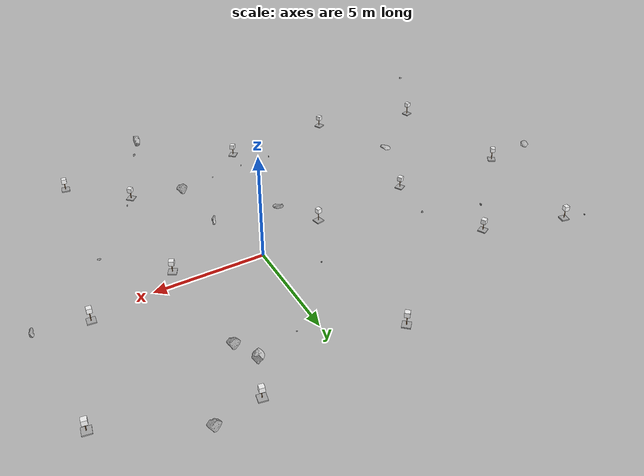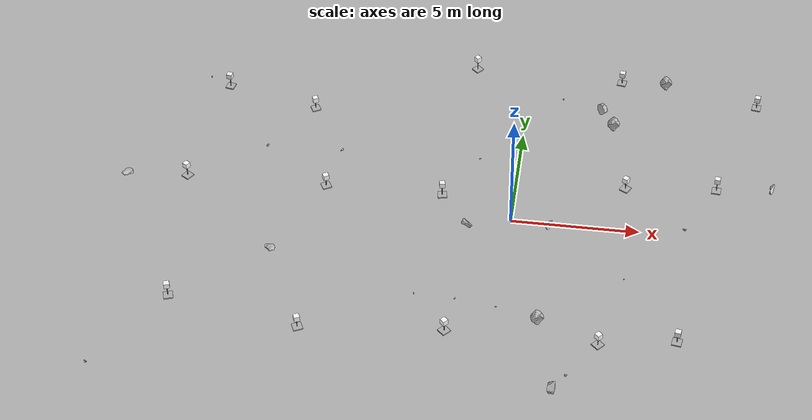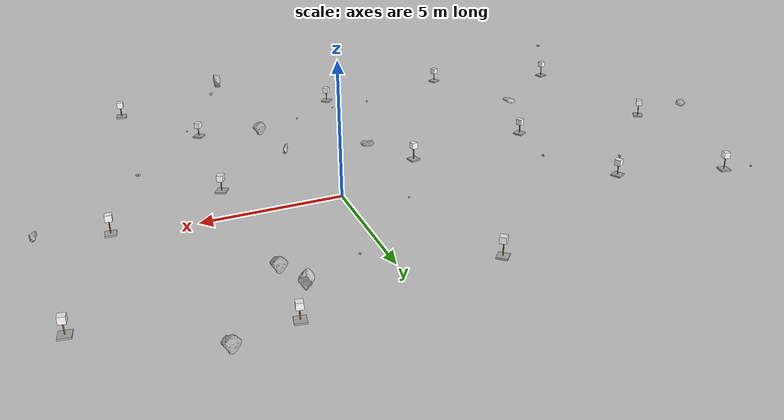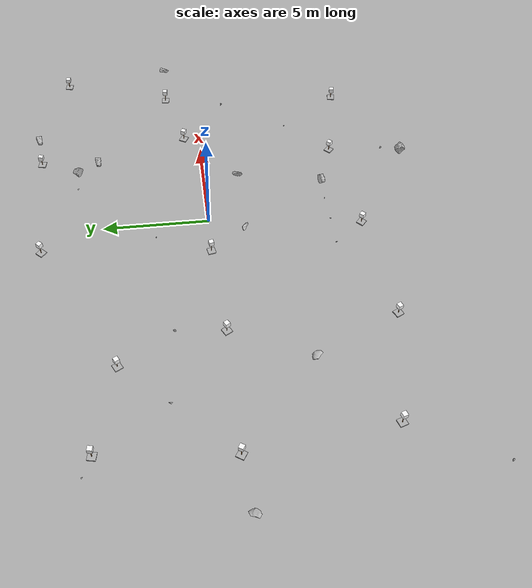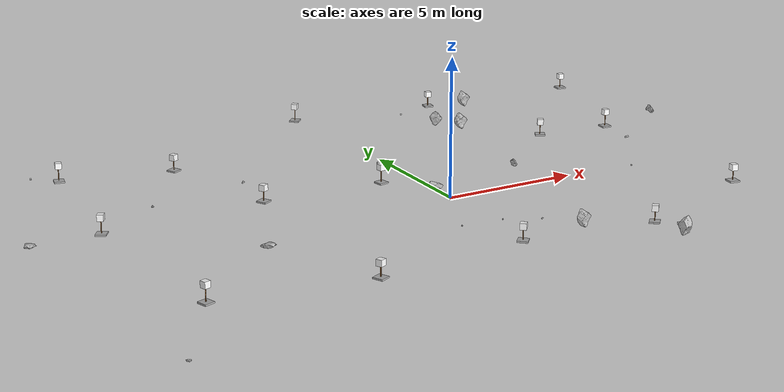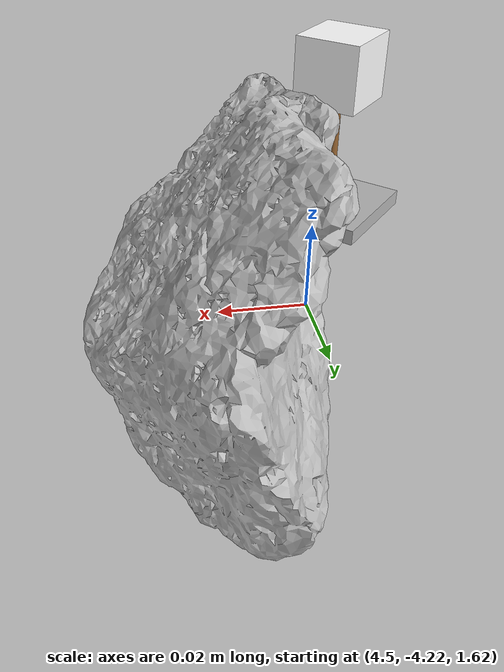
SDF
<sdf version="1.7">
 <world name="marsyard">
  <gravity>0 0 -9.81</gravity>
  <physics name="dart_physics" type="ignored">
   <max_step_size>0.003</max_step_size>
   <real_time_update_rate>333</real_time_update_rate>
   <real_time_factor>1.0</real_time_factor>
  </physics>
  <plugin filename="ignition-gazebo-physics-system" name="ignition::gazebo::systems::Physics"/>
  <plugin filename="ignition-gazebo-user-commands-system" name="ignition::gazebo::systems::UserCommands"/>
  <plugin filename="ignition-gazebo-scene-broadcaster-system" name="ignition::gazebo::systems::SceneBroadcaster"/>
  <plugin filename="ignition-gazebo-contact-system" name="ignition::gazebo::systems::Contact"/>
  <plugin filename="ignition-gazebo-sensors-system" name="ignition::gazebo::systems::Sensors">
   <render_engine>ogre2</render_engine>
  </plugin>
  <plugin filename="ignition-gazebo-imu-system" name="ignition::gazebo::systems::Imu"/>
  <plugin filename="ignition-gazebo-magnetometer-system" name="ignition::gazebo::systems::Magnetometer"/>
  <scene>
   <ambient>0.95 0.95 0.95 1</ambient>
   <background>0.70 0.70 0.70 1</background>
   <shadows>false</shadows>
  </scene>
  <light type="directional" name="sun">
   <cast_shadows>false</cast_shadows>
   <pose>0 0 30 0 0 0</pose>
   <diffuse>1 1 1 1</diffuse>
   <specular>0.15 0.15 0.15 1</specular>
   <direction>-0.35 0.1 -0.93</direction>
  </light>
  <model name="Rock_1">
   <static>true</static>
   <pose>-3.0000 -5.5000 1.2633 0.0000 0.0000 -1.6464</pose>
   <link name="link">
    <visual name="visual">
     <geometry><mesh><uri>package://rock_generator/rocks_ws/rock_5/meshes/rock_5.obj</uri></mesh></geometry>
    </visual>
    <collision name="collision">
     <geometry><mesh><uri>package://rock_generator/rocks_ws/rock_5/meshes/rock_5.obj</uri></mesh></geometry>
    </collision>
   </link>
  </model>
  <model name="Rock_2">
   <static>true</static>
   <pose>-1.5000 -5.5000 1.2031 0.0000 0.0000 -2.3221</pose>
   <link name="link">
    <visual name="visual">
     <geometry><mesh><uri>package://rock_generator/rocks_ws/rock_5/meshes/rock_5.obj</uri></mesh></geometry>
    </visual>
    <collision name="collision">
     <geometry><mesh><uri>package://rock_generator/rocks_ws/rock_5/meshes/rock_5.obj</uri></mesh></geometry>
    </collision>
   </link>
  </model>
  <model name="Rock_3">
   <static>true</static>
   <pose>0.0000 -5.5000 0.9745 0.0000 0.0000 -0.1630</pose>
   <link name="link">
    <visual name="visual">
     <geometry><mesh><uri>package://rock_generator/rocks_ws/rock_5/meshes/rock_5.obj</uri></mesh></geometry>
    </visual>
    <collision name="collision">
     <geometry><mesh><uri>package://rock_generator/rocks_ws/rock_5/meshes/rock_5.obj</uri></mesh></geometry>
    </collision>
   </link>
  </model>
  <model name="Rock_4">
   <static>true</static>
   <pose>1.5000 -5.5000 0.7193 0.0000 0.0000 -2.7299</pose>
   <link name="link">
    <visual name="visual">
     <geometry><mesh><uri>package://rock_generator/rocks_ws/rock_1/meshes/rock_1.obj</uri></mesh></geometry>
    </visual>
    <collision name="collision">
     <geometry><mesh><uri>package://rock_generator/rocks_ws/rock_1/meshes/rock_1.obj</uri></mesh></geometry>
    </collision>
   </link>
  </model>
  <model name="Rock_5">
   <static>true</static>
   <pose>-1.5000 -1.5000 1.1655 0.0000 0.0000 2.5687</pose>
   <link name="link">
    <visual name="visual">
     <geometry><mesh><uri>package://rock_generator/rocks_ws/rock_4/meshes/rock_4.obj</uri></mesh></geometry>
    </visual>
    <collision name="collision">
     <geometry><mesh><uri>package://rock_generator/rocks_ws/rock_4/meshes/rock_4.obj</uri></mesh></geometry>
    </collision>
   </link>
  </model>
  <model name="Rock_7">
   <static>true</static>
   <pose>1.5000 -1.5000 1.4813 0.0000 0.0000 -1.9368</pose>
   <link name="link">
    <visual name="visual">
     <geometry><mesh><uri>package://rock_generator/rocks_ws/rock_4/meshes/rock_4.obj</uri></mesh></geometry>
    </visual>
    <collision name="collision">
     <geometry><mesh><uri>package://rock_generator/rocks_ws/rock_4/meshes/rock_4.obj</uri></mesh></geometry>
    </collision>
   </link>
  </model>
  <model name="Rock_8">
   <static>true</static>
   <pose>-1.5000 2.5000 0.8244 0.0000 0.0000 0.2574</pose>
   <link name="link">
    <visual name="visual">
     <geometry><mesh><uri>package://rock_generator/rocks_ws/rock_5/meshes/rock_5.obj</uri></mesh></geometry>
    </visual>
    <collision name="collision">
     <geometry><mesh><uri>package://rock_generator/rocks_ws/rock_5/meshes/rock_5.obj</uri></mesh></geometry>
    </collision>
   </link>
  </model>
  <model name="Rock_11">
   <static>true</static>
   <pose>1.5000 6.0000 1.2874 0.0000 0.0000 2.3125</pose>
   <link name="link">
    <visual name="visual">
     <geometry><mesh><uri>package://rock_generator/rocks_ws/rock_5/meshes/rock_5.obj</uri></mesh></geometry>
    </visual>
    <collision name="collision">
     <geometry><mesh><uri>package://rock_generator/rocks_ws/rock_5/meshes/rock_5.obj</uri></mesh></geometry>
    </collision>
   </link>
  </model>
  <model name="Rock_12">
   <static>true</static>
   <pose>3.0000 6.0000 0.8656 0.0000 0.0000 -0.6915</pose>
   <link name="link">
    <visual name="visual">
     <geometry><mesh><uri>package://rock_generator/rocks_ws/rock_1/meshes/rock_1.obj</uri></mesh></geometry>
    </visual>
    <collision name="collision">
     <geometry><mesh><uri>package://rock_generator/rocks_ws/rock_1/meshes/rock_1.obj</uri></mesh></geometry>
    </collision>
   </link>
  </model>
  <model name="Rock_13">
   <static>true</static>
   <pose>2.4852 -9.5913 1.5741 0.0000 0.0000 1.6225</pose>
   <link name="link">
    <visual name="visual">
     <geometry><mesh><uri>package://rock_generator/rocks_ws/rock_1/meshes/rock_1.obj</uri></mesh></geometry>
    </visual>
    <collision name="collision">
     <geometry><mesh><uri>package://rock_generator/rocks_ws/rock_1/meshes/rock_1.obj</uri></mesh></geometry>
    </collision>
   </link>
  </model>
  <model name="Rock_15">
   <static>true</static>
   <pose>6.6291 -1.2183 1.5537 0.0000 0.0000 2.7369</pose>
   <link name="link">
    <visual name="visual">
     <geometry><mesh><uri>package://rock_generator/rocks_ws/rock_6/meshes/rock_6.obj</uri></mesh></geometry>
    </visual>
    <collision name="collision">
     <geometry><mesh><uri>package://rock_generator/rocks_ws/rock_6/meshes/rock_6.obj</uri></mesh></geometry>
    </collision>
   </link>
  </model>
  <model name="Rock_17">
   <static>true</static>
   <pose>-10.0501 2.3280 0.7031 0.0000 0.0000 1.2288</pose>
   <link name="link">
    <visual name="visual">
     <geometry><mesh><uri>package://rock_generator/rocks_ws/rock_6/meshes/rock_6.obj</uri></mesh></geometry>
    </visual>
   </link>
  </model>
  <model name="Rock_18">
   <static>true</static>
   <pose>9.9503 1.5204 1.4338 0.0000 0.0000 1.3435</pose>
   <link name="link">
    <visual name="visual">
     <geometry><mesh><uri>package://rock_generator/rocks_ws/rock_4/meshes/rock_4.obj</uri></mesh></geometry>
    </visual>
    <collision name="collision">
     <geometry><mesh><uri>package://rock_generator/rocks_ws/rock_4/meshes/rock_4.obj</uri></mesh></geometry>
    </collision>
   </link>
  </model>
  <model name="Rock_19">
   <static>true</static>
   <pose>-15.0181 -0.3960 1.1501 0.0000 0.0000 0.8718</pose>
   <link name="link">
    <visual name="visual">
     <geometry><mesh><uri>package://rock_generator/rocks_ws/rock_8/meshes/rock_8.obj</uri></mesh></geometry>
    </visual>
    <collision name="collision">
     <geometry><mesh><uri>package://rock_generator/rocks_ws/rock_8/meshes/rock_8.obj</uri></mesh></geometry>
    </collision>
   </link>
  </model>
  <model name="Rock_20">
   <static>true</static>
   <pose>5.6013 8.2009 0.8293 0.0000 0.0000 -2.8639</pose>
   <link name="link">
    <visual name="visual">
     <geometry><mesh><uri>package://rock_generator/rocks_ws/rock_1/meshes/rock_1.obj</uri></mesh></geometry>
    </visual>
    <collision name="collision">
     <geometry><mesh><uri>package://rock_generator/rocks_ws/rock_1/meshes/rock_1.obj</uri></mesh></geometry>
    </collision>
   </link>
  </model>
  <model name="Rock_22">
   <static>true</static>
   <pose>-14.0016 -10.0664 1.0778 0.0000 0.0000 2.3108</pose>
   <link name="link">
    <visual name="visual">
     <geometry><mesh><uri>package://rock_generator/rocks_ws/rock_6/meshes/rock_6.obj</uri></mesh></geometry>
    </visual>
    <collision name="collision">
     <geometry><mesh><uri>package://rock_generator/rocks_ws/rock_6/meshes/rock_6.obj</uri></mesh></geometry>
    </collision>
   </link>
  </model>
  <model name="Rock_23">
   <static>true</static>
   <pose>2.7911 -8.7434 1.3395 0.0000 0.0000 2.9712</pose>
   <link name="link">
    <visual name="visual">
     <geometry><mesh><uri>package://rock_generator/rocks_ws/rock_9/meshes/rock_9.obj</uri></mesh></geometry>
    </visual>
    <collision name="collision">
     <geometry><mesh><uri>package://rock_generator/rocks_ws/rock_9/meshes/rock_9.obj</uri></mesh></geometry>
    </collision>
   </link>
  </model>
  <model name="Rock_24">
   <static>true</static>
   <pose>-6.9515 1.9625 1.1391 0.0000 0.0000 -2.3042</pose>
   <link name="link">
    <visual name="visual">
     <geometry><mesh><uri>package://rock_generator/rocks_ws/rock_6/meshes/rock_6.obj</uri></mesh></geometry>
    </visual>
    <collision name="collision">
     <geometry><mesh><uri>package://rock_generator/rocks_ws/rock_6/meshes/rock_6.obj</uri></mesh></geometry>
    </collision>
   </link>
  </model>
  <model name="Rock_25">
   <static>true</static>
   <pose>3.6224 5.2368 0.9350 0.0000 0.0000 -3.0022</pose>
   <link name="link">
    <visual name="visual">
     <geometry><mesh><uri>package://rock_generator/rocks_ws/rock_1/meshes/rock_1.obj</uri></mesh></geometry>
    </visual>
   </link>
  </model>
  <model name="Rock_26">
   <static>true</static>
   <pose>-13.0721 5.6784 1.1732 0.0000 0.0000 2.1604</pose>
   <link name="link">
    <visual name="visual">
     <geometry><mesh><uri>package://rock_generator/rocks_ws/rock_5/meshes/rock_5.obj</uri></mesh></geometry>
    </visual>
    <collision name="collision">
     <geometry><mesh><uri>package://rock_generator/rocks_ws/rock_5/meshes/rock_5.obj</uri></mesh></geometry>
    </collision>
   </link>
  </model>
  <model name="Rock_27">
   <static>true</static>
   <pose>4.5255 -4.1796 1.6530 0.0000 0.0000 -1.7433</pose>
   <link name="link">
    <visual name="visual">
     <geometry><mesh><uri>package://rock_generator/rocks_ws/rock_5/meshes/rock_5.obj</uri></mesh></geometry>
    </visual>
    <collision name="collision">
     <geometry><mesh><uri>package://rock_generator/rocks_ws/rock_5/meshes/rock_5.obj</uri></mesh></geometry>
    </collision>
   </link>
  </model>
  <model name="Rock_28">
   <static>true</static>
   <pose>-8.6971 -3.6574 1.0794 0.0000 0.0000 2.0957</pose>
   <link name="link">
    <visual name="visual">
     <geometry><mesh><uri>package://rock_generator/rocks_ws/rock_8/meshes/rock_8.obj</uri></mesh></geometry>
    </visual>
    <collision name="collision">
     <geometry><mesh><uri>package://rock_generator/rocks_ws/rock_8/meshes/rock_8.obj</uri></mesh></geometry>
    </collision>
   </link>
  </model>
  <model name="ArUco_1">
   <pose>-12.200300 5.334200 1.033976 0.000000 0.000000 1.375056</pose>
   <include><uri>model://aruco_1</uri></include>
  </model>
  <model name="ArUco_2">
   <pose>-8.450300 4.334200 1.099796 0.000000 0.000000 -2.651266</pose>
   <include><uri>model://aruco_2</uri></include>
  </model>
  <model name="ArUco_3">
   <pose>-2.200300 7.584200 1.154883 0.000000 0.000000 -0.739992</pose>
   <include><uri>model://aruco_3</uri></include>
  </model>
  <model name="ArUco_4">
   <pose>3.799700 7.834200 0.845736 0.000000 0.000000 -1.743671</pose>
   <include><uri>model://aruco_4</uri></include>
  </model>
  <model name="ArUco_5">
   <pose>9.299700 6.584200 1.162188 0.000000 0.000000 -1.726727</pose>
   <include><uri>model://aruco_5</uri></include>
  </model>
  <model name="ArUco_6">
   <pose>-12.700300 -0.165800 1.010542 0.000000 0.000000 -0.568984</pose>
   <include><uri>model://aruco_6</uri></include>
  </model>
  <model name="ArUco_7">
   <pose>-7.200300 -0.165800 1.131783 0.000000 0.000000 0.504760</pose>
   <include><uri>model://aruco_7</uri></include>
  </model>
  <model name="ArUco_8">
   <pose>-2.700300 0.084200 0.957425 0.000000 0.000000 -1.373921</pose>
   <include><uri>model://aruco_8</uri></include>
  </model>
  <model name="ArUco_9">
   <pose>4.299700 0.834200 1.425683 0.000000 0.000000 2.635445</pose>
   <include><uri>model://aruco_9</uri></include>
  </model>
  <model name="ArUco_10">
   <pose>7.799700 1.584200 1.038827 0.000000 0.000000 -0.093288</pose>
   <include><uri>model://aruco_10</uri></include>
  </model>
  <model name="ArUco_11">
   <pose>-11.950300 -6.415800 0.873342 0.000000 0.000000 0.313763</pose>
   <include><uri>model://aruco_11</uri></include>
  </model>
  <model name="ArUco_12">
   <pose>-6.950300 -7.415800 0.976442 0.000000 0.000000 2.004330</pose>
   <include><uri>model://aruco_12</uri></include>
  </model>
  <model name="ArUco_13">
   <pose>-1.700300 -6.915800 0.976192 0.000000 0.000000 0.823993</pose>
   <include><uri>model://aruco_13</uri></include>
  </model>
  <model name="ArUco_14">
   <pose>3.799700 -6.415800 0.451417 0.000000 0.000000 2.398040</pose>
   <include><uri>model://aruco_14</uri></include>
  </model>
  <model name="ArUco_15">
   <pose>6.549700 -6.915800 1.544783 0.000000 0.000000 1.410102</pose>
   <include><uri>model://aruco_15</uri></include>
  </model>
 </world>
</sdf>

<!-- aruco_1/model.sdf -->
<sdf version="1.6">
  <model name="aruco_1">
    <static>true</static>
    <link name="link">
      <!-- Concrete Base -->
      <visual name="base_visual">
        <pose>0 0 0.025 0 0 0</pose>
        <geometry>
          <box>
            <size>0.35 0.35 0.05</size>
          </box>
        </geometry>
        <material>
          <ambient>0.7 0.7 0.7 1</ambient>
          <diffuse>0.7 0.7 0.7 1</diffuse>
        </material>
      </visual>
      <collision name="base_collision">
        <pose>0 0 0.025 0 0 0</pose>
        <geometry>
          <box>
            <size>0.35 0.35 0.05</size>
          </box>
        </geometry>
      </collision>

      <!-- Wooden Pole -->
      <visual name="pole_visual">
        <pose>0 0 0.26 0 0 0</pose>
        <geometry>
          <cylinder>
            <radius>0.015</radius>
            <length>0.42</length>
          </cylinder>
        </geometry>
        <material>
          <ambient>0.6 0.4 0.2 1</ambient>
          <diffuse>0.6 0.4 0.2 1</diffuse>
        </material>
      </visual>
      <collision name="pole_collision">
        <pose>0 0 0.26 0 0 0</pose>
        <geometry>
          <cylinder>
            <radius>0.015</radius>
            <length>0.42</length>
          </cylinder>
        </geometry>
      </collision>

      <!-- Head Box with ArUco Texture -->
      <visual name="head_visual">
        <pose>0 0 0.575 0 0 0</pose>
        <geometry>
          <box>
            <size>0.21 0.21 0.21</size>
          </box>
        </geometry>
        <material>
          <ambient>1 1 1 1</ambient>
          <diffuse>1 1 1 1</diffuse>
          <pbr>
            <metal>
              <albedo_map>model://aruco_1/materials/textures/marker_1.png</albedo_map>
            </metal>
          </pbr>
        </material>
      </visual>
      <collision name="head_collision">
        <pose>0 0 0.575 0 0 0</pose>
        <geometry>
          <box>
            <size>0.21 0.21 0.21</size>
          </box>
        </geometry>
      </collision>
    </link>
  </model>
</sdf>

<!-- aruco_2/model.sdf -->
<sdf version="1.6">
  <model name="aruco_2">
    <static>true</static>
    <link name="link">
      <visual name="base_visual">
        <pose>0 0 0.025 0 0 0</pose>
        <geometry>
          <box>
            <size>0.35 0.35 0.05</size>
          </box>
        </geometry>
        <material>
          <ambient>0.7 0.7 0.7 1</ambient>
          <diffuse>0.7 0.7 0.7 1</diffuse>
        </material>
      </visual>
      <collision name="base_collision">
        <pose>0 0 0.025 0 0 0</pose>
        <geometry>
          <box>
            <size>0.35 0.35 0.05</size>
          </box>
        </geometry>
      </collision>
      <visual name="pole_visual">
        <pose>0 0 0.228500 0 0 0</pose>
        <geometry>
          <cylinder>
            <radius>0.015</radius>
            <length>0.357000</length>
          </cylinder>
        </geometry>
        <material>
          <ambient>0.6 0.4 0.2 1</ambient>
          <diffuse>0.6 0.4 0.2 1</diffuse>
        </material>
      </visual>
      <collision name="pole_collision">
        <pose>0 0 0.228500 0 0 0</pose>
        <geometry>
          <cylinder>
            <radius>0.015</radius>
            <length>0.357000</length>
          </cylinder>
        </geometry>
      </collision>
      <visual name="head_visual">
        <pose>0 0 0.496250 0 0 0</pose>
        <geometry>
          <box>
            <size>0.21 0.21 0.21</size>
          </box>
        </geometry>
        <material>
          <ambient>1 1 1 1</ambient>
          <diffuse>1 1 1 1</diffuse>
          <pbr>
            <metal>
              <albedo_map>model://aruco_2/materials/textures/marker_2.png</albedo_map>
            </metal>
          </pbr>
        </material>
      </visual>
      <collision name="head_collision">
        <pose>0 0 0.496250 0 0 0</pose>
        <geometry>
          <box>
            <size>0.21 0.21 0.21</size>
          </box>
        </geometry>
      </collision>
    </link>
  </model>
</sdf>

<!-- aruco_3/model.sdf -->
<sdf version="1.6">
  <model name="aruco_3">
    <static>true</static>
    <link name="link">
      <!-- Concrete Base -->
      <visual name="base_visual">
        <pose>0 0 0.025 0 0 0</pose>
        <geometry>
          <box>
            <size>0.35 0.35 0.05</size>
          </box>
        </geometry>
        <material>
          <ambient>0.7 0.7 0.7 1</ambient>
          <diffuse>0.7 0.7 0.7 1</diffuse>
        </material>
      </visual>
      <collision name="base_collision">
        <pose>0 0 0.025 0 0 0</pose>
        <geometry>
          <box>
            <size>0.35 0.35 0.05</size>
          </box>
        </geometry>
      </collision>

      <!-- Wooden Pole -->
      <visual name="pole_visual">
        <pose>0 0 0.26 0 0 0</pose>
        <geometry>
          <cylinder>
            <radius>0.015</radius>
            <length>0.42</length>
          </cylinder>
        </geometry>
        <material>
          <ambient>0.6 0.4 0.2 1</ambient>
          <diffuse>0.6 0.4 0.2 1</diffuse>
        </material>
      </visual>
      <collision name="pole_collision">
        <pose>0 0 0.26 0 0 0</pose>
        <geometry>
          <cylinder>
            <radius>0.015</radius>
            <length>0.42</length>
          </cylinder>
        </geometry>
      </collision>

      <!-- Head Box with ArUco Texture -->
      <visual name="head_visual">
        <pose>0 0 0.575 0 0 0</pose>
        <geometry>
          <box>
            <size>0.21 0.21 0.21</size>
          </box>
        </geometry>
        <material>
          <ambient>1 1 1 1</ambient>
          <diffuse>1 1 1 1</diffuse>
          <pbr>
            <metal>
              <albedo_map>model://aruco_3/materials/textures/marker_3.png</albedo_map>
            </metal>
          </pbr>
        </material>
      </visual>
      <collision name="head_collision">
        <pose>0 0 0.575 0 0 0</pose>
        <geometry>
          <box>
            <size>0.21 0.21 0.21</size>
          </box>
        </geometry>
      </collision>
    </link>
  </model>
</sdf>

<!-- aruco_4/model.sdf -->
<sdf version="1.6">
  <model name="aruco_4">
    <static>true</static>
    <link name="link">
      <visual name="base_visual">
        <pose>0 0 0.025 0 0 0</pose>
        <geometry>
          <box>
            <size>0.35 0.35 0.05</size>
          </box>
        </geometry>
        <material>
          <ambient>0.7 0.7 0.7 1</ambient>
          <diffuse>0.7 0.7 0.7 1</diffuse>
        </material>
      </visual>
      <collision name="base_collision">
        <pose>0 0 0.025 0 0 0</pose>
        <geometry>
          <box>
            <size>0.35 0.35 0.05</size>
          </box>
        </geometry>
      </collision>
      <visual name="pole_visual">
        <pose>0 0 0.228500 0 0 0</pose>
        <geometry>
          <cylinder>
            <radius>0.015</radius>
            <length>0.357000</length>
          </cylinder>
        </geometry>
        <material>
          <ambient>0.6 0.4 0.2 1</ambient>
          <diffuse>0.6 0.4 0.2 1</diffuse>
        </material>
      </visual>
      <collision name="pole_collision">
        <pose>0 0 0.228500 0 0 0</pose>
        <geometry>
          <cylinder>
            <radius>0.015</radius>
            <length>0.357000</length>
          </cylinder>
        </geometry>
      </collision>
      <visual name="head_visual">
        <pose>0 0 0.496250 0 0 0</pose>
        <geometry>
          <box>
            <size>0.21 0.21 0.21</size>
          </box>
        </geometry>
        <material>
          <ambient>1 1 1 1</ambient>
          <diffuse>1 1 1 1</diffuse>
          <pbr>
            <metal>
              <albedo_map>model://aruco_4/materials/textures/marker_4.png</albedo_map>
            </metal>
          </pbr>
        </material>
      </visual>
      <collision name="head_collision">
        <pose>0 0 0.496250 0 0 0</pose>
        <geometry>
          <box>
            <size>0.21 0.21 0.21</size>
          </box>
        </geometry>
      </collision>
    </link>
  </model>
</sdf>

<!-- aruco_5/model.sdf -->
<sdf version="1.6">
  <model name="aruco_5">
    <static>true</static>
    <link name="link">
      <visual name="base_visual">
        <pose>0 0 0.025 0 0 0</pose>
        <geometry>
          <box>
            <size>0.35 0.35 0.05</size>
          </box>
        </geometry>
        <material>
          <ambient>0.7 0.7 0.7 1</ambient>
          <diffuse>0.7 0.7 0.7 1</diffuse>
        </material>
      </visual>
      <collision name="base_collision">
        <pose>0 0 0.025 0 0 0</pose>
        <geometry>
          <box>
            <size>0.35 0.35 0.05</size>
          </box>
        </geometry>
      </collision>
      <visual name="pole_visual">
        <pose>0 0 0.228500 0 0 0</pose>
        <geometry>
          <cylinder>
            <radius>0.015</radius>
            <length>0.357000</length>
          </cylinder>
        </geometry>
        <material>
          <ambient>0.6 0.4 0.2 1</ambient>
          <diffuse>0.6 0.4 0.2 1</diffuse>
        </material>
      </visual>
      <collision name="pole_collision">
        <pose>0 0 0.228500 0 0 0</pose>
        <geometry>
          <cylinder>
            <radius>0.015</radius>
            <length>0.357000</length>
          </cylinder>
        </geometry>
      </collision>
      <visual name="head_visual">
        <pose>0 0 0.496250 0 0 0</pose>
        <geometry>
          <box>
            <size>0.21 0.21 0.21</size>
          </box>
        </geometry>
        <material>
          <ambient>1 1 1 1</ambient>
          <diffuse>1 1 1 1</diffuse>
          <pbr>
            <metal>
              <albedo_map>model://aruco_5/materials/textures/marker_5.png</albedo_map>
            </metal>
          </pbr>
        </material>
      </visual>
      <collision name="head_collision">
        <pose>0 0 0.496250 0 0 0</pose>
        <geometry>
          <box>
            <size>0.21 0.21 0.21</size>
          </box>
        </geometry>
      </collision>
    </link>
  </model>
</sdf>

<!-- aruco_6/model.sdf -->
<sdf version="1.6">
  <model name="aruco_6">
    <static>true</static>
    <link name="link">
      <!-- Concrete Base -->
      <visual name="base_visual">
        <pose>0 0 0.025 0 0 0</pose>
        <geometry>
          <box>
            <size>0.35 0.35 0.05</size>
          </box>
        </geometry>
        <material>
          <ambient>0.7 0.7 0.7 1</ambient>
          <diffuse>0.7 0.7 0.7 1</diffuse>
        </material>
      </visual>
      <collision name="base_collision">
        <pose>0 0 0.025 0 0 0</pose>
        <geometry>
          <box>
            <size>0.35 0.35 0.05</size>
          </box>
        </geometry>
      </collision>

      <!-- Wooden Pole -->
      <visual name="pole_visual">
        <pose>0 0 0.26 0 0 0</pose>
        <geometry>
          <cylinder>
            <radius>0.015</radius>
            <length>0.42</length>
          </cylinder>
        </geometry>
        <material>
          <ambient>0.6 0.4 0.2 1</ambient>
          <diffuse>0.6 0.4 0.2 1</diffuse>
        </material>
      </visual>
      <collision name="pole_collision">
        <pose>0 0 0.26 0 0 0</pose>
        <geometry>
          <cylinder>
            <radius>0.015</radius>
            <length>0.42</length>
          </cylinder>
        </geometry>
      </collision>

      <!-- Head Box with ArUco Texture -->
      <visual name="head_visual">
        <pose>0 0 0.575 0 0 0</pose>
        <geometry>
          <box>
            <size>0.21 0.21 0.21</size>
          </box>
        </geometry>
        <material>
          <ambient>1 1 1 1</ambient>
          <diffuse>1 1 1 1</diffuse>
          <pbr>
            <metal>
              <albedo_map>model://aruco_6/materials/textures/marker_6.png</albedo_map>
            </metal>
          </pbr>
        </material>
      </visual>
      <collision name="head_collision">
        <pose>0 0 0.575 0 0 0</pose>
        <geometry>
          <box>
            <size>0.21 0.21 0.21</size>
          </box>
        </geometry>
      </collision>
    </link>
  </model>
</sdf>

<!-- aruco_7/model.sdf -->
<sdf version="1.6">
  <model name="aruco_7">
    <static>true</static>
    <link name="link">
      <visual name="base_visual">
        <pose>0 0 0.025 0 0 0</pose>
        <geometry>
          <box>
            <size>0.35 0.35 0.05</size>
          </box>
        </geometry>
        <material>
          <ambient>0.7 0.7 0.7 1</ambient>
          <diffuse>0.7 0.7 0.7 1</diffuse>
        </material>
      </visual>
      <collision name="base_collision">
        <pose>0 0 0.025 0 0 0</pose>
        <geometry>
          <box>
            <size>0.35 0.35 0.05</size>
          </box>
        </geometry>
      </collision>
      <visual name="pole_visual">
        <pose>0 0 0.228500 0 0 0</pose>
        <geometry>
          <cylinder>
            <radius>0.015</radius>
            <length>0.357000</length>
          </cylinder>
        </geometry>
        <material>
          <ambient>0.6 0.4 0.2 1</ambient>
          <diffuse>0.6 0.4 0.2 1</diffuse>
        </material>
      </visual>
      <collision name="pole_collision">
        <pose>0 0 0.228500 0 0 0</pose>
        <geometry>
          <cylinder>
            <radius>0.015</radius>
            <length>0.357000</length>
          </cylinder>
        </geometry>
      </collision>
      <visual name="head_visual">
        <pose>0 0 0.496250 0 0 0</pose>
        <geometry>
          <box>
            <size>0.21 0.21 0.21</size>
          </box>
        </geometry>
        <material>
          <ambient>1 1 1 1</ambient>
          <diffuse>1 1 1 1</diffuse>
          <pbr>
            <metal>
              <albedo_map>model://aruco_7/materials/textures/marker_7.png</albedo_map>
            </metal>
          </pbr>
        </material>
      </visual>
      <collision name="head_collision">
        <pose>0 0 0.496250 0 0 0</pose>
        <geometry>
          <box>
            <size>0.21 0.21 0.21</size>
          </box>
        </geometry>
      </collision>
    </link>
  </model>
</sdf>

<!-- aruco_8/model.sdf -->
<sdf version="1.6">
  <model name="aruco_8">
    <static>true</static>
    <link name="link">
      <!-- Concrete Base -->
      <visual name="base_visual">
        <pose>0 0 0.025 0 0 0</pose>
        <geometry>
          <box>
            <size>0.35 0.35 0.05</size>
          </box>
        </geometry>
        <material>
          <ambient>0.7 0.7 0.7 1</ambient>
          <diffuse>0.7 0.7 0.7 1</diffuse>
        </material>
      </visual>
      <collision name="base_collision">
        <pose>0 0 0.025 0 0 0</pose>
        <geometry>
          <box>
            <size>0.35 0.35 0.05</size>
          </box>
        </geometry>
      </collision>

      <!-- Wooden Pole -->
      <visual name="pole_visual">
        <pose>0 0 0.26 0 0 0</pose>
        <geometry>
          <cylinder>
            <radius>0.015</radius>
            <length>0.42</length>
          </cylinder>
        </geometry>
        <material>
          <ambient>0.6 0.4 0.2 1</ambient>
          <diffuse>0.6 0.4 0.2 1</diffuse>
        </material>
      </visual>
      <collision name="pole_collision">
        <pose>0 0 0.26 0 0 0</pose>
        <geometry>
          <cylinder>
            <radius>0.015</radius>
            <length>0.42</length>
          </cylinder>
        </geometry>
      </collision>

      <!-- Head Box with ArUco Texture -->
      <visual name="head_visual">
        <pose>0 0 0.575 0 0 0</pose>
        <geometry>
          <box>
            <size>0.21 0.21 0.21</size>
          </box>
        </geometry>
        <material>
          <ambient>1 1 1 1</ambient>
          <diffuse>1 1 1 1</diffuse>
          <pbr>
            <metal>
              <albedo_map>model://aruco_8/materials/textures/marker_8.png</albedo_map>
            </metal>
          </pbr>
        </material>
      </visual>
      <collision name="head_collision">
        <pose>0 0 0.575 0 0 0</pose>
        <geometry>
          <box>
            <size>0.21 0.21 0.21</size>
          </box>
        </geometry>
      </collision>
    </link>
  </model>
</sdf>

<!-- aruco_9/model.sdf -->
<sdf version="1.6">
  <model name="aruco_9">
    <static>true</static>
    <link name="link">
      <visual name="base_visual">
        <pose>0 0 0.025 0 0 0</pose>
        <geometry>
          <box>
            <size>0.35 0.35 0.05</size>
          </box>
        </geometry>
        <material>
          <ambient>0.7 0.7 0.7 1</ambient>
          <diffuse>0.7 0.7 0.7 1</diffuse>
        </material>
      </visual>
      <collision name="base_collision">
        <pose>0 0 0.025 0 0 0</pose>
        <geometry>
          <box>
            <size>0.35 0.35 0.05</size>
          </box>
        </geometry>
      </collision>
      <visual name="pole_visual">
        <pose>0 0 0.228500 0 0 0</pose>
        <geometry>
          <cylinder>
            <radius>0.015</radius>
            <length>0.357000</length>
          </cylinder>
        </geometry>
        <material>
          <ambient>0.6 0.4 0.2 1</ambient>
          <diffuse>0.6 0.4 0.2 1</diffuse>
        </material>
      </visual>
      <collision name="pole_collision">
        <pose>0 0 0.228500 0 0 0</pose>
        <geometry>
          <cylinder>
            <radius>0.015</radius>
            <length>0.357000</length>
          </cylinder>
        </geometry>
      </collision>
      <visual name="head_visual">
        <pose>0 0 0.496250 0 0 0</pose>
        <geometry>
          <box>
            <size>0.21 0.21 0.21</size>
          </box>
        </geometry>
        <material>
          <ambient>1 1 1 1</ambient>
          <diffuse>1 1 1 1</diffuse>
          <pbr>
            <metal>
              <albedo_map>model://aruco_9/materials/textures/marker_9.png</albedo_map>
            </metal>
          </pbr>
        </material>
      </visual>
      <collision name="head_collision">
        <pose>0 0 0.496250 0 0 0</pose>
        <geometry>
          <box>
            <size>0.21 0.21 0.21</size>
          </box>
        </geometry>
      </collision>
    </link>
  </model>
</sdf>

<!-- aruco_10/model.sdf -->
<sdf version="1.6">
  <model name="aruco_10">
    <static>true</static>
    <link name="link">
      <!-- Concrete Base -->
      <visual name="base_visual">
        <pose>0 0 0.025 0 0 0</pose>
        <geometry>
          <box>
            <size>0.35 0.35 0.05</size>
          </box>
        </geometry>
        <material>
          <ambient>0.7 0.7 0.7 1</ambient>
          <diffuse>0.7 0.7 0.7 1</diffuse>
        </material>
      </visual>
      <collision name="base_collision">
        <pose>0 0 0.025 0 0 0</pose>
        <geometry>
          <box>
            <size>0.35 0.35 0.05</size>
          </box>
        </geometry>
      </collision>

      <!-- Wooden Pole -->
      <visual name="pole_visual">
        <pose>0 0 0.26 0 0 0</pose>
        <geometry>
          <cylinder>
            <radius>0.015</radius>
            <length>0.42</length>
          </cylinder>
        </geometry>
        <material>
          <ambient>0.6 0.4 0.2 1</ambient>
          <diffuse>0.6 0.4 0.2 1</diffuse>
        </material>
      </visual>
      <collision name="pole_collision">
        <pose>0 0 0.26 0 0 0</pose>
        <geometry>
          <cylinder>
            <radius>0.015</radius>
            <length>0.42</length>
          </cylinder>
        </geometry>
      </collision>

      <!-- Head Box with ArUco Texture -->
      <visual name="head_visual">
        <pose>0 0 0.575 0 0 0</pose>
        <geometry>
          <box>
            <size>0.21 0.21 0.21</size>
          </box>
        </geometry>
        <material>
          <ambient>1 1 1 1</ambient>
          <diffuse>1 1 1 1</diffuse>
          <pbr>
            <metal>
              <albedo_map>model://aruco_10/materials/textures/marker_10.png</albedo_map>
            </metal>
          </pbr>
        </material>
      </visual>
      <collision name="head_collision">
        <pose>0 0 0.575 0 0 0</pose>
        <geometry>
          <box>
            <size>0.21 0.21 0.21</size>
          </box>
        </geometry>
      </collision>
    </link>
  </model>
</sdf>

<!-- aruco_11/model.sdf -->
<sdf version="1.6">
  <model name="aruco_11">
    <static>true</static>
    <link name="link">
      <!-- Concrete Base -->
      <visual name="base_visual">
        <pose>0 0 0.025 0 0 0</pose>
        <geometry>
          <box>
            <size>0.35 0.35 0.05</size>
          </box>
        </geometry>
        <material>
          <ambient>0.7 0.7 0.7 1</ambient>
          <diffuse>0.7 0.7 0.7 1</diffuse>
        </material>
      </visual>
      <collision name="base_collision">
        <pose>0 0 0.025 0 0 0</pose>
        <geometry>
          <box>
            <size>0.35 0.35 0.05</size>
          </box>
        </geometry>
      </collision>

      <!-- Wooden Pole -->
      <visual name="pole_visual">
        <pose>0 0 0.26 0 0 0</pose>
        <geometry>
          <cylinder>
            <radius>0.015</radius>
            <length>0.42</length>
          </cylinder>
        </geometry>
        <material>
          <ambient>0.6 0.4 0.2 1</ambient>
          <diffuse>0.6 0.4 0.2 1</diffuse>
        </material>
      </visual>
      <collision name="pole_collision">
        <pose>0 0 0.26 0 0 0</pose>
        <geometry>
          <cylinder>
            <radius>0.015</radius>
            <length>0.42</length>
          </cylinder>
        </geometry>
      </collision>

      <!-- Head Box with ArUco Texture -->
      <visual name="head_visual">
        <pose>0 0 0.575 0 0 0</pose>
        <geometry>
          <box>
            <size>0.21 0.21 0.21</size>
          </box>
        </geometry>
        <material>
          <ambient>1 1 1 1</ambient>
          <diffuse>1 1 1 1</diffuse>
          <pbr>
            <metal>
              <albedo_map>model://aruco_11/materials/textures/marker_11.png</albedo_map>
            </metal>
          </pbr>
        </material>
      </visual>
      <collision name="head_collision">
        <pose>0 0 0.575 0 0 0</pose>
        <geometry>
          <box>
            <size>0.21 0.21 0.21</size>
          </box>
        </geometry>
      </collision>
    </link>
  </model>
</sdf>

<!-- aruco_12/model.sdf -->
<sdf version="1.6">
  <model name="aruco_12">
    <static>true</static>
    <link name="link">
      <visual name="base_visual">
        <pose>0 0 0.025 0 0 0</pose>
        <geometry>
          <box>
            <size>0.35 0.35 0.05</size>
          </box>
        </geometry>
        <material>
          <ambient>0.7 0.7 0.7 1</ambient>
          <diffuse>0.7 0.7 0.7 1</diffuse>
        </material>
      </visual>
      <collision name="base_collision">
        <pose>0 0 0.025 0 0 0</pose>
        <geometry>
          <box>
            <size>0.35 0.35 0.05</size>
          </box>
        </geometry>
      </collision>
      <visual name="pole_visual">
        <pose>0 0 0.228500 0 0 0</pose>
        <geometry>
          <cylinder>
            <radius>0.015</radius>
            <length>0.357000</length>
          </cylinder>
        </geometry>
        <material>
          <ambient>0.6 0.4 0.2 1</ambient>
          <diffuse>0.6 0.4 0.2 1</diffuse>
        </material>
      </visual>
      <collision name="pole_collision">
        <pose>0 0 0.228500 0 0 0</pose>
        <geometry>
          <cylinder>
            <radius>0.015</radius>
            <length>0.357000</length>
          </cylinder>
        </geometry>
      </collision>
      <visual name="head_visual">
        <pose>0 0 0.496250 0 0 0</pose>
        <geometry>
          <box>
            <size>0.21 0.21 0.21</size>
          </box>
        </geometry>
        <material>
          <ambient>1 1 1 1</ambient>
          <diffuse>1 1 1 1</diffuse>
          <pbr>
            <metal>
              <albedo_map>model://aruco_12/materials/textures/marker_12.png</albedo_map>
            </metal>
          </pbr>
        </material>
      </visual>
      <collision name="head_collision">
        <pose>0 0 0.496250 0 0 0</pose>
        <geometry>
          <box>
            <size>0.21 0.21 0.21</size>
          </box>
        </geometry>
      </collision>
    </link>
  </model>
</sdf>

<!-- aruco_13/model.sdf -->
<sdf version="1.6">
  <model name="aruco_13">
    <static>true</static>
    <link name="link">
      <visual name="base_visual">
        <pose>0 0 0.025 0 0 0</pose>
        <geometry>
          <box>
            <size>0.35 0.35 0.05</size>
          </box>
        </geometry>
        <material>
          <ambient>0.7 0.7 0.7 1</ambient>
          <diffuse>0.7 0.7 0.7 1</diffuse>
        </material>
      </visual>
      <collision name="base_collision">
        <pose>0 0 0.025 0 0 0</pose>
        <geometry>
          <box>
            <size>0.35 0.35 0.05</size>
          </box>
        </geometry>
      </collision>
      <visual name="pole_visual">
        <pose>0 0 0.228500 0 0 0</pose>
        <geometry>
          <cylinder>
            <radius>0.015</radius>
            <length>0.357000</length>
          </cylinder>
        </geometry>
        <material>
          <ambient>0.6 0.4 0.2 1</ambient>
          <diffuse>0.6 0.4 0.2 1</diffuse>
        </material>
      </visual>
      <collision name="pole_collision">
        <pose>0 0 0.228500 0 0 0</pose>
        <geometry>
          <cylinder>
            <radius>0.015</radius>
            <length>0.357000</length>
          </cylinder>
        </geometry>
      </collision>
      <visual name="head_visual">
        <pose>0 0 0.496250 0 0 0</pose>
        <geometry>
          <box>
            <size>0.21 0.21 0.21</size>
          </box>
        </geometry>
        <material>
          <ambient>1 1 1 1</ambient>
          <diffuse>1 1 1 1</diffuse>
          <pbr>
            <metal>
              <albedo_map>model://aruco_13/materials/textures/marker_13.png</albedo_map>
            </metal>
          </pbr>
        </material>
      </visual>
      <collision name="head_collision">
        <pose>0 0 0.496250 0 0 0</pose>
        <geometry>
          <box>
            <size>0.21 0.21 0.21</size>
          </box>
        </geometry>
      </collision>
    </link>
  </model>
</sdf>

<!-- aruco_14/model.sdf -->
<sdf version="1.6">
  <model name="aruco_14">
    <static>true</static>
    <link name="link">
      <visual name="base_visual">
        <pose>0 0 0.025 0 0 0</pose>
        <geometry>
          <box>
            <size>0.35 0.35 0.05</size>
          </box>
        </geometry>
        <material>
          <ambient>0.7 0.7 0.7 1</ambient>
          <diffuse>0.7 0.7 0.7 1</diffuse>
        </material>
      </visual>
      <collision name="base_collision">
        <pose>0 0 0.025 0 0 0</pose>
        <geometry>
          <box>
            <size>0.35 0.35 0.05</size>
          </box>
        </geometry>
      </collision>
      <visual name="pole_visual">
        <pose>0 0 0.228500 0 0 0</pose>
        <geometry>
          <cylinder>
            <radius>0.015</radius>
            <length>0.357000</length>
          </cylinder>
        </geometry>
        <material>
          <ambient>0.6 0.4 0.2 1</ambient>
          <diffuse>0.6 0.4 0.2 1</diffuse>
        </material>
      </visual>
      <collision name="pole_collision">
        <pose>0 0 0.228500 0 0 0</pose>
        <geometry>
          <cylinder>
            <radius>0.015</radius>
            <length>0.357000</length>
          </cylinder>
        </geometry>
      </collision>
      <visual name="head_visual">
        <pose>0 0 0.496250 0 0 0</pose>
        <geometry>
          <box>
            <size>0.21 0.21 0.21</size>
          </box>
        </geometry>
        <material>
          <ambient>1 1 1 1</ambient>
          <diffuse>1 1 1 1</diffuse>
          <pbr>
            <metal>
              <albedo_map>model://aruco_14/materials/textures/marker_14.png</albedo_map>
            </metal>
          </pbr>
        </material>
      </visual>
      <collision name="head_collision">
        <pose>0 0 0.496250 0 0 0</pose>
        <geometry>
          <box>
            <size>0.21 0.21 0.21</size>
          </box>
        </geometry>
      </collision>
    </link>
  </model>
</sdf>

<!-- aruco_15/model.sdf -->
<sdf version="1.6">
  <model name="aruco_15">
    <static>true</static>
    <link name="link">
      <visual name="base_visual">
        <pose>0 0 0.025 0 0 0</pose>
        <geometry>
          <box>
            <size>0.35 0.35 0.05</size>
          </box>
        </geometry>
        <material>
          <ambient>0.7 0.7 0.7 1</ambient>
          <diffuse>0.7 0.7 0.7 1</diffuse>
        </material>
      </visual>
      <collision name="base_collision">
        <pose>0 0 0.025 0 0 0</pose>
        <geometry>
          <box>
            <size>0.35 0.35 0.05</size>
          </box>
        </geometry>
      </collision>
      <visual name="pole_visual">
        <pose>0 0 0.228500 0 0 0</pose>
        <geometry>
          <cylinder>
            <radius>0.015</radius>
            <length>0.357000</length>
          </cylinder>
        </geometry>
        <material>
          <ambient>0.6 0.4 0.2 1</ambient>
          <diffuse>0.6 0.4 0.2 1</diffuse>
        </material>
      </visual>
      <collision name="pole_collision">
        <pose>0 0 0.228500 0 0 0</pose>
        <geometry>
          <cylinder>
            <radius>0.015</radius>
            <length>0.357000</length>
          </cylinder>
        </geometry>
      </collision>
      <visual name="head_visual">
        <pose>0 0 0.496250 0 0 0</pose>
        <geometry>
          <box>
            <size>0.21 0.21 0.21</size>
          </box>
        </geometry>
        <material>
          <ambient>1 1 1 1</ambient>
          <diffuse>1 1 1 1</diffuse>
          <pbr>
            <metal>
              <albedo_map>model://aruco_15/materials/textures/marker_15.png</albedo_map>
            </metal>
          </pbr>
        </material>
      </visual>
      <collision name="head_collision">
        <pose>0 0 0.496250 0 0 0</pose>
        <geometry>
          <box>
            <size>0.21 0.21 0.21</size>
          </box>
        </geometry>
      </collision>
    </link>
  </model>
</sdf>
